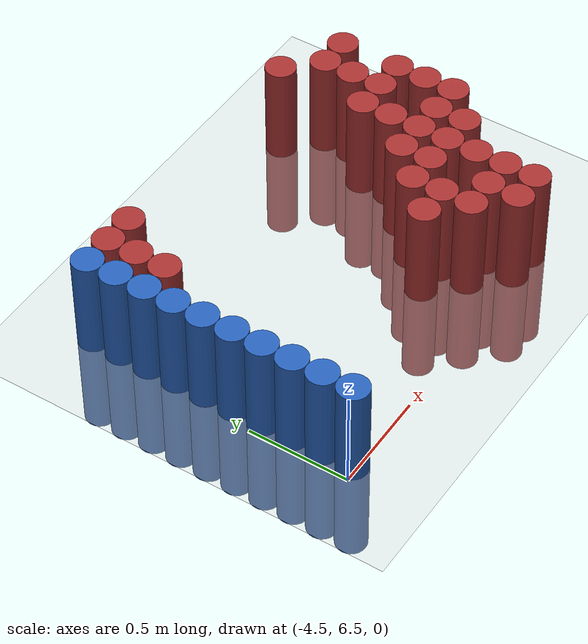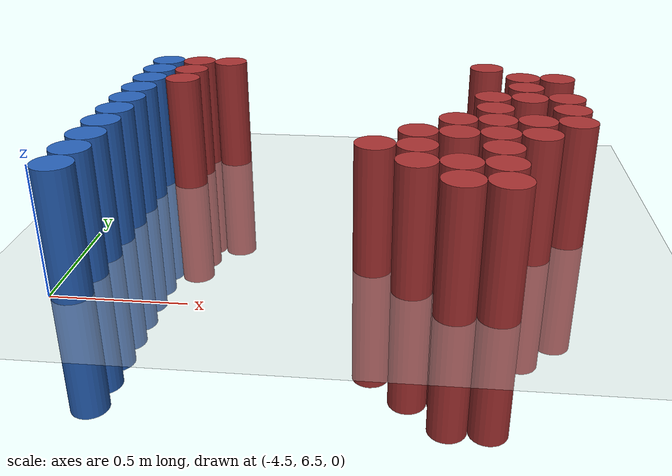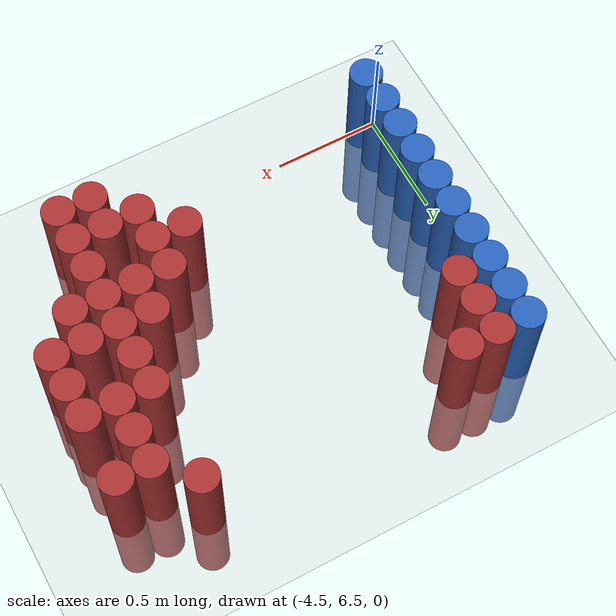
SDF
<sdf version="1.6">
 <world name="default">
  <model name="ground_plane">
   <static>1</static>
   <link name="link">
    <collision name="collision">
     <geometry><plane><normal>0 0 1</normal><size>100 100</size></plane></geometry>
     <surface><friction><ode><mu>100</mu><mu2>50</mu2></ode></friction></surface>
    </collision>
    <visual name="visual">
     <cast_shadows>0</cast_shadows>
     <geometry><plane><normal>0 0 1</normal><size>100 100</size></plane></geometry>
     <material>
      <script><uri>file://media/materials/scripts/gazebo.material</uri><name>Gazebo/Grey</name></script>
     </material>
    </visual>
   </link>
  </model>
  <model name="unit_cylinder_105">
   <static>1</static>
   <pose>-4.425000 6.525000 0.000000 0.000000 0.000000 0.000000</pose>
   <link name="link">
    <inertial>
     <mass>1</mass>
     <inertia><ixx>0.145833</ixx><ixy>0</ixy><ixz>0</ixz><iyy>0.145833</iyy><iyz>0</iyz><izz>0.125</izz></inertia>
    </inertial>
    <collision name="collision">
     <geometry><cylinder><radius>0.075000</radius><length>1</length></cylinder></geometry>
    </collision>
    <visual name="visual">
     <geometry><cylinder><radius>0.075000</radius><length>1</length></cylinder></geometry>
     <material>
      <ambient>0.152000 0.379000 0.720000 1</ambient>
      <diffuse>0.152000 0.379000 0.720000 1</diffuse>
     </material>
     <material>
      <script><name>Gazebo/Grey</name><uri>file://media/materials/scripts/gazebo.material</uri></script>
     </material>
    </visual>
    <sensor name="sensor_contact" type="contact"><contact><collision>collision</collision></contact></sensor>
   </link>
   <plugin filename="gz-sim-touchplugin-system" name="gz::sim::systems::TouchPlugin">
    <target>robot</target>
    <namespace>robot</namespace>
    <time>0.001</time>
    <enabled>true</enabled>
   </plugin>
  </model>
  <model name="unit_cylinder_106">
   <static>1</static>
   <pose>-4.425000 6.675000 0.000000 0.000000 0.000000 0.000000</pose>
   <link name="link">
    <inertial>
     <mass>1</mass>
     <inertia><ixx>0.145833</ixx><ixy>0</ixy><ixz>0</ixz><iyy>0.145833</iyy><iyz>0</iyz><izz>0.125</izz></inertia>
    </inertial>
    <collision name="collision">
     <geometry><cylinder><radius>0.075000</radius><length>1</length></cylinder></geometry>
    </collision>
    <visual name="visual">
     <geometry><cylinder><radius>0.075000</radius><length>1</length></cylinder></geometry>
     <material>
      <ambient>0.152000 0.379000 0.720000 1</ambient>
      <diffuse>0.152000 0.379000 0.720000 1</diffuse>
     </material>
     <material>
      <script><name>Gazebo/Grey</name><uri>file://media/materials/scripts/gazebo.material</uri></script>
     </material>
    </visual>
    <sensor name="sensor_contact" type="contact"><contact><collision>collision</collision></contact></sensor>
   </link>
   <plugin filename="gz-sim-touchplugin-system" name="gz::sim::systems::TouchPlugin">
    <target>robot</target>
    <namespace>robot</namespace>
    <time>0.001</time>
    <enabled>true</enabled>
   </plugin>
  </model>
  <model name="unit_cylinder_107">
   <static>1</static>
   <pose>-4.425000 6.825000 0.000000 0.000000 0.000000 0.000000</pose>
   <link name="link">
    <inertial>
     <mass>1</mass>
     <inertia><ixx>0.145833</ixx><ixy>0</ixy><ixz>0</ixz><iyy>0.145833</iyy><iyz>0</iyz><izz>0.125</izz></inertia>
    </inertial>
    <collision name="collision">
     <geometry><cylinder><radius>0.075000</radius><length>1</length></cylinder></geometry>
    </collision>
    <visual name="visual">
     <geometry><cylinder><radius>0.075000</radius><length>1</length></cylinder></geometry>
     <material>
      <ambient>0.152000 0.379000 0.720000 1</ambient>
      <diffuse>0.152000 0.379000 0.720000 1</diffuse>
     </material>
     <material>
      <script><name>Gazebo/Grey</name><uri>file://media/materials/scripts/gazebo.material</uri></script>
     </material>
    </visual>
    <sensor name="sensor_contact" type="contact"><contact><collision>collision</collision></contact></sensor>
   </link>
   <plugin filename="gz-sim-touchplugin-system" name="gz::sim::systems::TouchPlugin">
    <target>robot</target>
    <namespace>robot</namespace>
    <time>0.001</time>
    <enabled>true</enabled>
   </plugin>
  </model>
  <model name="unit_cylinder_108">
   <static>1</static>
   <pose>-4.425000 6.975000 0.000000 0.000000 0.000000 0.000000</pose>
   <link name="link">
    <inertial>
     <mass>1</mass>
     <inertia><ixx>0.145833</ixx><ixy>0</ixy><ixz>0</ixz><iyy>0.145833</iyy><iyz>0</iyz><izz>0.125</izz></inertia>
    </inertial>
    <collision name="collision">
     <geometry><cylinder><radius>0.075000</radius><length>1</length></cylinder></geometry>
    </collision>
    <visual name="visual">
     <geometry><cylinder><radius>0.075000</radius><length>1</length></cylinder></geometry>
     <material>
      <ambient>0.152000 0.379000 0.720000 1</ambient>
      <diffuse>0.152000 0.379000 0.720000 1</diffuse>
     </material>
     <material>
      <script><name>Gazebo/Grey</name><uri>file://media/materials/scripts/gazebo.material</uri></script>
     </material>
    </visual>
    <sensor name="sensor_contact" type="contact"><contact><collision>collision</collision></contact></sensor>
   </link>
   <plugin filename="gz-sim-touchplugin-system" name="gz::sim::systems::TouchPlugin">
    <target>robot</target>
    <namespace>robot</namespace>
    <time>0.001</time>
    <enabled>true</enabled>
   </plugin>
  </model>
  <model name="unit_cylinder_109">
   <static>1</static>
   <pose>-4.425000 7.125000 0.000000 0.000000 0.000000 0.000000</pose>
   <link name="link">
    <inertial>
     <mass>1</mass>
     <inertia><ixx>0.145833</ixx><ixy>0</ixy><ixz>0</ixz><iyy>0.145833</iyy><iyz>0</iyz><izz>0.125</izz></inertia>
    </inertial>
    <collision name="collision">
     <geometry><cylinder><radius>0.075000</radius><length>1</length></cylinder></geometry>
    </collision>
    <visual name="visual">
     <geometry><cylinder><radius>0.075000</radius><length>1</length></cylinder></geometry>
     <material>
      <ambient>0.152000 0.379000 0.720000 1</ambient>
      <diffuse>0.152000 0.379000 0.720000 1</diffuse>
     </material>
     <material>
      <script><name>Gazebo/Grey</name><uri>file://media/materials/scripts/gazebo.material</uri></script>
     </material>
    </visual>
    <sensor name="sensor_contact" type="contact"><contact><collision>collision</collision></contact></sensor>
   </link>
   <plugin filename="gz-sim-touchplugin-system" name="gz::sim::systems::TouchPlugin">
    <target>robot</target>
    <namespace>robot</namespace>
    <time>0.001</time>
    <enabled>true</enabled>
   </plugin>
  </model>
  <model name="unit_cylinder_110">
   <static>1</static>
   <pose>-4.425000 7.275000 0.000000 0.000000 0.000000 0.000000</pose>
   <link name="link">
    <inertial>
     <mass>1</mass>
     <inertia><ixx>0.145833</ixx><ixy>0</ixy><ixz>0</ixz><iyy>0.145833</iyy><iyz>0</iyz><izz>0.125</izz></inertia>
    </inertial>
    <collision name="collision">
     <geometry><cylinder><radius>0.075000</radius><length>1</length></cylinder></geometry>
    </collision>
    <visual name="visual">
     <geometry><cylinder><radius>0.075000</radius><length>1</length></cylinder></geometry>
     <material>
      <ambient>0.152000 0.379000 0.720000 1</ambient>
      <diffuse>0.152000 0.379000 0.720000 1</diffuse>
     </material>
     <material>
      <script><name>Gazebo/Grey</name><uri>file://media/materials/scripts/gazebo.material</uri></script>
     </material>
    </visual>
    <sensor name="sensor_contact" type="contact"><contact><collision>collision</collision></contact></sensor>
   </link>
   <plugin filename="gz-sim-touchplugin-system" name="gz::sim::systems::TouchPlugin">
    <target>robot</target>
    <namespace>robot</namespace>
    <time>0.001</time>
    <enabled>true</enabled>
   </plugin>
  </model>
  <model name="unit_cylinder_111">
   <static>1</static>
   <pose>-4.425000 7.425000 0.000000 0.000000 0.000000 0.000000</pose>
   <link name="link">
    <inertial>
     <mass>1</mass>
     <inertia><ixx>0.145833</ixx><ixy>0</ixy><ixz>0</ixz><iyy>0.145833</iyy><iyz>0</iyz><izz>0.125</izz></inertia>
    </inertial>
    <collision name="collision">
     <geometry><cylinder><radius>0.075000</radius><length>1</length></cylinder></geometry>
    </collision>
    <visual name="visual">
     <geometry><cylinder><radius>0.075000</radius><length>1</length></cylinder></geometry>
     <material>
      <ambient>0.152000 0.379000 0.720000 1</ambient>
      <diffuse>0.152000 0.379000 0.720000 1</diffuse>
     </material>
     <material>
      <script><name>Gazebo/Grey</name><uri>file://media/materials/scripts/gazebo.material</uri></script>
     </material>
    </visual>
    <sensor name="sensor_contact" type="contact"><contact><collision>collision</collision></contact></sensor>
   </link>
   <plugin filename="gz-sim-touchplugin-system" name="gz::sim::systems::TouchPlugin">
    <target>robot</target>
    <namespace>robot</namespace>
    <time>0.001</time>
    <enabled>true</enabled>
   </plugin>
  </model>
  <model name="unit_cylinder_112">
   <static>1</static>
   <pose>-4.425000 7.575000 0.000000 0.000000 0.000000 0.000000</pose>
   <link name="link">
    <inertial>
     <mass>1</mass>
     <inertia><ixx>0.145833</ixx><ixy>0</ixy><ixz>0</ixz><iyy>0.145833</iyy><iyz>0</iyz><izz>0.125</izz></inertia>
    </inertial>
    <collision name="collision">
     <geometry><cylinder><radius>0.075000</radius><length>1</length></cylinder></geometry>
    </collision>
    <visual name="visual">
     <geometry><cylinder><radius>0.075000</radius><length>1</length></cylinder></geometry>
     <material>
      <ambient>0.152000 0.379000 0.720000 1</ambient>
      <diffuse>0.152000 0.379000 0.720000 1</diffuse>
     </material>
     <material>
      <script><name>Gazebo/Grey</name><uri>file://media/materials/scripts/gazebo.material</uri></script>
     </material>
    </visual>
    <sensor name="sensor_contact" type="contact"><contact><collision>collision</collision></contact></sensor>
   </link>
   <plugin filename="gz-sim-touchplugin-system" name="gz::sim::systems::TouchPlugin">
    <target>robot</target>
    <namespace>robot</namespace>
    <time>0.001</time>
    <enabled>true</enabled>
   </plugin>
  </model>
  <model name="unit_cylinder_113">
   <static>1</static>
   <pose>-4.425000 7.725000 0.000000 0.000000 0.000000 0.000000</pose>
   <link name="link">
    <inertial>
     <mass>1</mass>
     <inertia><ixx>0.145833</ixx><ixy>0</ixy><ixz>0</ixz><iyy>0.145833</iyy><iyz>0</iyz><izz>0.125</izz></inertia>
    </inertial>
    <collision name="collision">
     <geometry><cylinder><radius>0.075000</radius><length>1</length></cylinder></geometry>
    </collision>
    <visual name="visual">
     <geometry><cylinder><radius>0.075000</radius><length>1</length></cylinder></geometry>
     <material>
      <ambient>0.152000 0.379000 0.720000 1</ambient>
      <diffuse>0.152000 0.379000 0.720000 1</diffuse>
     </material>
     <material>
      <script><name>Gazebo/Grey</name><uri>file://media/materials/scripts/gazebo.material</uri></script>
     </material>
    </visual>
    <sensor name="sensor_contact" type="contact"><contact><collision>collision</collision></contact></sensor>
   </link>
   <plugin filename="gz-sim-touchplugin-system" name="gz::sim::systems::TouchPlugin">
    <target>robot</target>
    <namespace>robot</namespace>
    <time>0.001</time>
    <enabled>true</enabled>
   </plugin>
  </model>
  <model name="unit_cylinder_114">
   <static>1</static>
   <pose>-4.425000 7.875000 0.000000 0.000000 0.000000 0.000000</pose>
   <link name="link">
    <inertial>
     <mass>1</mass>
     <inertia><ixx>0.145833</ixx><ixy>0</ixy><ixz>0</ixz><iyy>0.145833</iyy><iyz>0</iyz><izz>0.125</izz></inertia>
    </inertial>
    <collision name="collision">
     <geometry><cylinder><radius>0.075000</radius><length>1</length></cylinder></geometry>
    </collision>
    <visual name="visual">
     <geometry><cylinder><radius>0.075000</radius><length>1</length></cylinder></geometry>
     <material>
      <ambient>0.152000 0.379000 0.720000 1</ambient>
      <diffuse>0.152000 0.379000 0.720000 1</diffuse>
     </material>
     <material>
      <script><name>Gazebo/Grey</name><uri>file://media/materials/scripts/gazebo.material</uri></script>
     </material>
    </visual>
    <sensor name="sensor_contact" type="contact"><contact><collision>collision</collision></contact></sensor>
   </link>
   <plugin filename="gz-sim-touchplugin-system" name="gz::sim::systems::TouchPlugin">
    <target>robot</target>
    <namespace>robot</namespace>
    <time>0.001</time>
    <enabled>true</enabled>
   </plugin>
  </model>
  <model name="unit_cylinder_132">
   <static>1</static>
   <pose>-4.275000 7.575000 0.000000 0.000000 0.000000 0.000000</pose>
   <link name="link">
    <inertial>
     <mass>1</mass>
     <inertia><ixx>0.145833</ixx><ixy>0</ixy><ixz>0</ixz><iyy>0.145833</iyy><iyz>0</iyz><izz>0.125</izz></inertia>
    </inertial>
    <collision name="collision">
     <geometry><cylinder><radius>0.075000</radius><length>1</length></cylinder></geometry>
    </collision>
    <visual name="visual">
     <geometry><cylinder><radius>0.075000</radius><length>1</length></cylinder></geometry>
     <material>
      <ambient>0.648000 0.192000 0.192000 1</ambient>
      <diffuse>0.648000 0.192000 0.192000 1</diffuse>
     </material>
     <material>
      <script><name>Gazebo/Grey</name><uri>file://media/materials/scripts/gazebo.material</uri></script>
     </material>
    </visual>
    <sensor name="sensor_contact" type="contact"><contact><collision>collision</collision></contact></sensor>
   </link>
   <plugin filename="gz-sim-touchplugin-system" name="gz::sim::systems::TouchPlugin">
    <target>robot</target>
    <namespace>robot</namespace>
    <time>0.001</time>
    <enabled>true</enabled>
   </plugin>
  </model>
  <model name="unit_cylinder_133">
   <static>1</static>
   <pose>-4.275000 7.725000 0.000000 0.000000 0.000000 0.000000</pose>
   <link name="link">
    <inertial>
     <mass>1</mass>
     <inertia><ixx>0.145833</ixx><ixy>0</ixy><ixz>0</ixz><iyy>0.145833</iyy><iyz>0</iyz><izz>0.125</izz></inertia>
    </inertial>
    <collision name="collision">
     <geometry><cylinder><radius>0.075000</radius><length>1</length></cylinder></geometry>
    </collision>
    <visual name="visual">
     <geometry><cylinder><radius>0.075000</radius><length>1</length></cylinder></geometry>
     <material>
      <ambient>0.648000 0.192000 0.192000 1</ambient>
      <diffuse>0.648000 0.192000 0.192000 1</diffuse>
     </material>
     <material>
      <script><name>Gazebo/Grey</name><uri>file://media/materials/scripts/gazebo.material</uri></script>
     </material>
    </visual>
    <sensor name="sensor_contact" type="contact"><contact><collision>collision</collision></contact></sensor>
   </link>
   <plugin filename="gz-sim-touchplugin-system" name="gz::sim::systems::TouchPlugin">
    <target>robot</target>
    <namespace>robot</namespace>
    <time>0.001</time>
    <enabled>true</enabled>
   </plugin>
  </model>
  <model name="unit_cylinder_134">
   <static>1</static>
   <pose>-4.275000 7.875000 0.000000 0.000000 0.000000 0.000000</pose>
   <link name="link">
    <inertial>
     <mass>1</mass>
     <inertia><ixx>0.145833</ixx><ixy>0</ixy><ixz>0</ixz><iyy>0.145833</iyy><iyz>0</iyz><izz>0.125</izz></inertia>
    </inertial>
    <collision name="collision">
     <geometry><cylinder><radius>0.075000</radius><length>1</length></cylinder></geometry>
    </collision>
    <visual name="visual">
     <geometry><cylinder><radius>0.075000</radius><length>1</length></cylinder></geometry>
     <material>
      <ambient>0.648000 0.192000 0.192000 1</ambient>
      <diffuse>0.648000 0.192000 0.192000 1</diffuse>
     </material>
     <material>
      <script><name>Gazebo/Grey</name><uri>file://media/materials/scripts/gazebo.material</uri></script>
     </material>
    </visual>
    <sensor name="sensor_contact" type="contact"><contact><collision>collision</collision></contact></sensor>
   </link>
   <plugin filename="gz-sim-touchplugin-system" name="gz::sim::systems::TouchPlugin">
    <target>robot</target>
    <namespace>robot</namespace>
    <time>0.001</time>
    <enabled>true</enabled>
   </plugin>
  </model>
  <model name="unit_cylinder_141">
   <static>1</static>
   <pose>-4.125000 7.875000 0.000000 0.000000 0.000000 0.000000</pose>
   <link name="link">
    <inertial>
     <mass>1</mass>
     <inertia><ixx>0.145833</ixx><ixy>0</ixy><ixz>0</ixz><iyy>0.145833</iyy><iyz>0</iyz><izz>0.125</izz></inertia>
    </inertial>
    <collision name="collision">
     <geometry><cylinder><radius>0.075000</radius><length>1</length></cylinder></geometry>
    </collision>
    <visual name="visual">
     <geometry><cylinder><radius>0.075000</radius><length>1</length></cylinder></geometry>
     <material>
      <ambient>0.648000 0.192000 0.192000 1</ambient>
      <diffuse>0.648000 0.192000 0.192000 1</diffuse>
     </material>
     <material>
      <script><name>Gazebo/Grey</name><uri>file://media/materials/scripts/gazebo.material</uri></script>
     </material>
    </visual>
    <sensor name="sensor_contact" type="contact"><contact><collision>collision</collision></contact></sensor>
   </link>
   <plugin filename="gz-sim-touchplugin-system" name="gz::sim::systems::TouchPlugin">
    <target>robot</target>
    <namespace>robot</namespace>
    <time>0.001</time>
    <enabled>true</enabled>
   </plugin>
  </model>
  <model name="unit_cylinder_161">
   <static>1</static>
   <pose>-3.375000 6.825000 0.000000 0.000000 0.000000 0.000000</pose>
   <link name="link">
    <inertial>
     <mass>1</mass>
     <inertia><ixx>0.145833</ixx><ixy>0</ixy><ixz>0</ixz><iyy>0.145833</iyy><iyz>0</iyz><izz>0.125</izz></inertia>
    </inertial>
    <collision name="collision">
     <geometry><cylinder><radius>0.075000</radius><length>1</length></cylinder></geometry>
    </collision>
    <visual name="visual">
     <geometry><cylinder><radius>0.075000</radius><length>1</length></cylinder></geometry>
     <material>
      <ambient>0.648000 0.192000 0.192000 1</ambient>
      <diffuse>0.648000 0.192000 0.192000 1</diffuse>
     </material>
     <material>
      <script><name>Gazebo/Grey</name><uri>file://media/materials/scripts/gazebo.material</uri></script>
     </material>
    </visual>
    <sensor name="sensor_contact" type="contact"><contact><collision>collision</collision></contact></sensor>
   </link>
   <plugin filename="gz-sim-touchplugin-system" name="gz::sim::systems::TouchPlugin">
    <target>robot</target>
    <namespace>robot</namespace>
    <time>0.001</time>
    <enabled>true</enabled>
   </plugin>
  </model>
  <model name="unit_cylinder_165">
   <static>1</static>
   <pose>-3.225000 6.675000 0.000000 0.000000 0.000000 0.000000</pose>
   <link name="link">
    <inertial>
     <mass>1</mass>
     <inertia><ixx>0.145833</ixx><ixy>0</ixy><ixz>0</ixz><iyy>0.145833</iyy><iyz>0</iyz><izz>0.125</izz></inertia>
    </inertial>
    <collision name="collision">
     <geometry><cylinder><radius>0.075000</radius><length>1</length></cylinder></geometry>
    </collision>
    <visual name="visual">
     <geometry><cylinder><radius>0.075000</radius><length>1</length></cylinder></geometry>
     <material>
      <ambient>0.648000 0.192000 0.192000 1</ambient>
      <diffuse>0.648000 0.192000 0.192000 1</diffuse>
     </material>
     <material>
      <script><name>Gazebo/Grey</name><uri>file://media/materials/scripts/gazebo.material</uri></script>
     </material>
    </visual>
    <sensor name="sensor_contact" type="contact"><contact><collision>collision</collision></contact></sensor>
   </link>
   <plugin filename="gz-sim-touchplugin-system" name="gz::sim::systems::TouchPlugin">
    <target>robot</target>
    <namespace>robot</namespace>
    <time>0.001</time>
    <enabled>true</enabled>
   </plugin>
  </model>
  <model name="unit_cylinder_166">
   <static>1</static>
   <pose>-3.225000 6.825000 0.000000 0.000000 0.000000 0.000000</pose>
   <link name="link">
    <inertial>
     <mass>1</mass>
     <inertia><ixx>0.145833</ixx><ixy>0</ixy><ixz>0</ixz><iyy>0.145833</iyy><iyz>0</iyz><izz>0.125</izz></inertia>
    </inertial>
    <collision name="collision">
     <geometry><cylinder><radius>0.075000</radius><length>1</length></cylinder></geometry>
    </collision>
    <visual name="visual">
     <geometry><cylinder><radius>0.075000</radius><length>1</length></cylinder></geometry>
     <material>
      <ambient>0.648000 0.192000 0.192000 1</ambient>
      <diffuse>0.648000 0.192000 0.192000 1</diffuse>
     </material>
     <material>
      <script><name>Gazebo/Grey</name><uri>file://media/materials/scripts/gazebo.material</uri></script>
     </material>
    </visual>
    <sensor name="sensor_contact" type="contact"><contact><collision>collision</collision></contact></sensor>
   </link>
   <plugin filename="gz-sim-touchplugin-system" name="gz::sim::systems::TouchPlugin">
    <target>robot</target>
    <namespace>robot</namespace>
    <time>0.001</time>
    <enabled>true</enabled>
   </plugin>
  </model>
  <model name="unit_cylinder_167">
   <static>1</static>
   <pose>-3.225000 6.975000 0.000000 0.000000 0.000000 0.000000</pose>
   <link name="link">
    <inertial>
     <mass>1</mass>
     <inertia><ixx>0.145833</ixx><ixy>0</ixy><ixz>0</ixz><iyy>0.145833</iyy><iyz>0</iyz><izz>0.125</izz></inertia>
    </inertial>
    <collision name="collision">
     <geometry><cylinder><radius>0.075000</radius><length>1</length></cylinder></geometry>
    </collision>
    <visual name="visual">
     <geometry><cylinder><radius>0.075000</radius><length>1</length></cylinder></geometry>
     <material>
      <ambient>0.648000 0.192000 0.192000 1</ambient>
      <diffuse>0.648000 0.192000 0.192000 1</diffuse>
     </material>
     <material>
      <script><name>Gazebo/Grey</name><uri>file://media/materials/scripts/gazebo.material</uri></script>
     </material>
    </visual>
    <sensor name="sensor_contact" type="contact"><contact><collision>collision</collision></contact></sensor>
   </link>
   <plugin filename="gz-sim-touchplugin-system" name="gz::sim::systems::TouchPlugin">
    <target>robot</target>
    <namespace>robot</namespace>
    <time>0.001</time>
    <enabled>true</enabled>
   </plugin>
  </model>
  <model name="unit_cylinder_168">
   <static>1</static>
   <pose>-3.075000 6.525000 0.000000 0.000000 0.000000 0.000000</pose>
   <link name="link">
    <inertial>
     <mass>1</mass>
     <inertia><ixx>0.145833</ixx><ixy>0</ixy><ixz>0</ixz><iyy>0.145833</iyy><iyz>0</iyz><izz>0.125</izz></inertia>
    </inertial>
    <collision name="collision">
     <geometry><cylinder><radius>0.075000</radius><length>1</length></cylinder></geometry>
    </collision>
    <visual name="visual">
     <geometry><cylinder><radius>0.075000</radius><length>1</length></cylinder></geometry>
     <material>
      <ambient>0.648000 0.192000 0.192000 1</ambient>
      <diffuse>0.648000 0.192000 0.192000 1</diffuse>
     </material>
     <material>
      <script><name>Gazebo/Grey</name><uri>file://media/materials/scripts/gazebo.material</uri></script>
     </material>
    </visual>
    <sensor name="sensor_contact" type="contact"><contact><collision>collision</collision></contact></sensor>
   </link>
   <plugin filename="gz-sim-touchplugin-system" name="gz::sim::systems::TouchPlugin">
    <target>robot</target>
    <namespace>robot</namespace>
    <time>0.001</time>
    <enabled>true</enabled>
   </plugin>
  </model>
  <model name="unit_cylinder_169">
   <static>1</static>
   <pose>-3.075000 6.675000 0.000000 0.000000 0.000000 0.000000</pose>
   <link name="link">
    <inertial>
     <mass>1</mass>
     <inertia><ixx>0.145833</ixx><ixy>0</ixy><ixz>0</ixz><iyy>0.145833</iyy><iyz>0</iyz><izz>0.125</izz></inertia>
    </inertial>
    <collision name="collision">
     <geometry><cylinder><radius>0.075000</radius><length>1</length></cylinder></geometry>
    </collision>
    <visual name="visual">
     <geometry><cylinder><radius>0.075000</radius><length>1</length></cylinder></geometry>
     <material>
      <ambient>0.648000 0.192000 0.192000 1</ambient>
      <diffuse>0.648000 0.192000 0.192000 1</diffuse>
     </material>
     <material>
      <script><name>Gazebo/Grey</name><uri>file://media/materials/scripts/gazebo.material</uri></script>
     </material>
    </visual>
    <sensor name="sensor_contact" type="contact"><contact><collision>collision</collision></contact></sensor>
   </link>
   <plugin filename="gz-sim-touchplugin-system" name="gz::sim::systems::TouchPlugin">
    <target>robot</target>
    <namespace>robot</namespace>
    <time>0.001</time>
    <enabled>true</enabled>
   </plugin>
  </model>
  <model name="unit_cylinder_170">
   <static>1</static>
   <pose>-3.075000 6.975000 0.000000 0.000000 0.000000 0.000000</pose>
   <link name="link">
    <inertial>
     <mass>1</mass>
     <inertia><ixx>0.145833</ixx><ixy>0</ixy><ixz>0</ixz><iyy>0.145833</iyy><iyz>0</iyz><izz>0.125</izz></inertia>
    </inertial>
    <collision name="collision">
     <geometry><cylinder><radius>0.075000</radius><length>1</length></cylinder></geometry>
    </collision>
    <visual name="visual">
     <geometry><cylinder><radius>0.075000</radius><length>1</length></cylinder></geometry>
     <material>
      <ambient>0.648000 0.192000 0.192000 1</ambient>
      <diffuse>0.648000 0.192000 0.192000 1</diffuse>
     </material>
     <material>
      <script><name>Gazebo/Grey</name><uri>file://media/materials/scripts/gazebo.material</uri></script>
     </material>
    </visual>
    <sensor name="sensor_contact" type="contact"><contact><collision>collision</collision></contact></sensor>
   </link>
   <plugin filename="gz-sim-touchplugin-system" name="gz::sim::systems::TouchPlugin">
    <target>robot</target>
    <namespace>robot</namespace>
    <time>0.001</time>
    <enabled>true</enabled>
   </plugin>
  </model>
  <model name="unit_cylinder_171">
   <static>1</static>
   <pose>-3.075000 7.125000 0.000000 0.000000 0.000000 0.000000</pose>
   <link name="link">
    <inertial>
     <mass>1</mass>
     <inertia><ixx>0.145833</ixx><ixy>0</ixy><ixz>0</ixz><iyy>0.145833</iyy><iyz>0</iyz><izz>0.125</izz></inertia>
    </inertial>
    <collision name="collision">
     <geometry><cylinder><radius>0.075000</radius><length>1</length></cylinder></geometry>
    </collision>
    <visual name="visual">
     <geometry><cylinder><radius>0.075000</radius><length>1</length></cylinder></geometry>
     <material>
      <ambient>0.648000 0.192000 0.192000 1</ambient>
      <diffuse>0.648000 0.192000 0.192000 1</diffuse>
     </material>
     <material>
      <script><name>Gazebo/Grey</name><uri>file://media/materials/scripts/gazebo.material</uri></script>
     </material>
    </visual>
    <sensor name="sensor_contact" type="contact"><contact><collision>collision</collision></contact></sensor>
   </link>
   <plugin filename="gz-sim-touchplugin-system" name="gz::sim::systems::TouchPlugin">
    <target>robot</target>
    <namespace>robot</namespace>
    <time>0.001</time>
    <enabled>true</enabled>
   </plugin>
  </model>
  <model name="unit_cylinder_173">
   <static>1</static>
   <pose>-2.925000 6.525000 0.000000 0.000000 0.000000 0.000000</pose>
   <link name="link">
    <inertial>
     <mass>1</mass>
     <inertia><ixx>0.145833</ixx><ixy>0</ixy><ixz>0</ixz><iyy>0.145833</iyy><iyz>0</iyz><izz>0.125</izz></inertia>
    </inertial>
    <collision name="collision">
     <geometry><cylinder><radius>0.075000</radius><length>1</length></cylinder></geometry>
    </collision>
    <visual name="visual">
     <geometry><cylinder><radius>0.075000</radius><length>1</length></cylinder></geometry>
     <material>
      <ambient>0.648000 0.192000 0.192000 1</ambient>
      <diffuse>0.648000 0.192000 0.192000 1</diffuse>
     </material>
     <material>
      <script><name>Gazebo/Grey</name><uri>file://media/materials/scripts/gazebo.material</uri></script>
     </material>
    </visual>
    <sensor name="sensor_contact" type="contact"><contact><collision>collision</collision></contact></sensor>
   </link>
   <plugin filename="gz-sim-touchplugin-system" name="gz::sim::systems::TouchPlugin">
    <target>robot</target>
    <namespace>robot</namespace>
    <time>0.001</time>
    <enabled>true</enabled>
   </plugin>
  </model>
  <model name="unit_cylinder_174">
   <static>1</static>
   <pose>-2.925000 6.675000 0.000000 0.000000 0.000000 0.000000</pose>
   <link name="link">
    <inertial>
     <mass>1</mass>
     <inertia><ixx>0.145833</ixx><ixy>0</ixy><ixz>0</ixz><iyy>0.145833</iyy><iyz>0</iyz><izz>0.125</izz></inertia>
    </inertial>
    <collision name="collision">
     <geometry><cylinder><radius>0.075000</radius><length>1</length></cylinder></geometry>
    </collision>
    <visual name="visual">
     <geometry><cylinder><radius>0.075000</radius><length>1</length></cylinder></geometry>
     <material>
      <ambient>0.648000 0.192000 0.192000 1</ambient>
      <diffuse>0.648000 0.192000 0.192000 1</diffuse>
     </material>
     <material>
      <script><name>Gazebo/Grey</name><uri>file://media/materials/scripts/gazebo.material</uri></script>
     </material>
    </visual>
    <sensor name="sensor_contact" type="contact"><contact><collision>collision</collision></contact></sensor>
   </link>
   <plugin filename="gz-sim-touchplugin-system" name="gz::sim::systems::TouchPlugin">
    <target>robot</target>
    <namespace>robot</namespace>
    <time>0.001</time>
    <enabled>true</enabled>
   </plugin>
  </model>
  <model name="unit_cylinder_175">
   <static>1</static>
   <pose>-2.925000 6.825000 0.000000 0.000000 0.000000 0.000000</pose>
   <link name="link">
    <inertial>
     <mass>1</mass>
     <inertia><ixx>0.145833</ixx><ixy>0</ixy><ixz>0</ixz><iyy>0.145833</iyy><iyz>0</iyz><izz>0.125</izz></inertia>
    </inertial>
    <collision name="collision">
     <geometry><cylinder><radius>0.075000</radius><length>1</length></cylinder></geometry>
    </collision>
    <visual name="visual">
     <geometry><cylinder><radius>0.075000</radius><length>1</length></cylinder></geometry>
     <material>
      <ambient>0.648000 0.192000 0.192000 1</ambient>
      <diffuse>0.648000 0.192000 0.192000 1</diffuse>
     </material>
     <material>
      <script><name>Gazebo/Grey</name><uri>file://media/materials/scripts/gazebo.material</uri></script>
     </material>
    </visual>
    <sensor name="sensor_contact" type="contact"><contact><collision>collision</collision></contact></sensor>
   </link>
   <plugin filename="gz-sim-touchplugin-system" name="gz::sim::systems::TouchPlugin">
    <target>robot</target>
    <namespace>robot</namespace>
    <time>0.001</time>
    <enabled>true</enabled>
   </plugin>
  </model>
  <model name="unit_cylinder_176">
   <static>1</static>
   <pose>-2.925000 6.975000 0.000000 0.000000 0.000000 0.000000</pose>
   <link name="link">
    <inertial>
     <mass>1</mass>
     <inertia><ixx>0.145833</ixx><ixy>0</ixy><ixz>0</ixz><iyy>0.145833</iyy><iyz>0</iyz><izz>0.125</izz></inertia>
    </inertial>
    <collision name="collision">
     <geometry><cylinder><radius>0.075000</radius><length>1</length></cylinder></geometry>
    </collision>
    <visual name="visual">
     <geometry><cylinder><radius>0.075000</radius><length>1</length></cylinder></geometry>
     <material>
      <ambient>0.648000 0.192000 0.192000 1</ambient>
      <diffuse>0.648000 0.192000 0.192000 1</diffuse>
     </material>
     <material>
      <script><name>Gazebo/Grey</name><uri>file://media/materials/scripts/gazebo.material</uri></script>
     </material>
    </visual>
    <sensor name="sensor_contact" type="contact"><contact><collision>collision</collision></contact></sensor>
   </link>
   <plugin filename="gz-sim-touchplugin-system" name="gz::sim::systems::TouchPlugin">
    <target>robot</target>
    <namespace>robot</namespace>
    <time>0.001</time>
    <enabled>true</enabled>
   </plugin>
  </model>
  <model name="unit_cylinder_177">
   <static>1</static>
   <pose>-2.925000 7.125000 0.000000 0.000000 0.000000 0.000000</pose>
   <link name="link">
    <inertial>
     <mass>1</mass>
     <inertia><ixx>0.145833</ixx><ixy>0</ixy><ixz>0</ixz><iyy>0.145833</iyy><iyz>0</iyz><izz>0.125</izz></inertia>
    </inertial>
    <collision name="collision">
     <geometry><cylinder><radius>0.075000</radius><length>1</length></cylinder></geometry>
    </collision>
    <visual name="visual">
     <geometry><cylinder><radius>0.075000</radius><length>1</length></cylinder></geometry>
     <material>
      <ambient>0.648000 0.192000 0.192000 1</ambient>
      <diffuse>0.648000 0.192000 0.192000 1</diffuse>
     </material>
     <material>
      <script><name>Gazebo/Grey</name><uri>file://media/materials/scripts/gazebo.material</uri></script>
     </material>
    </visual>
    <sensor name="sensor_contact" type="contact"><contact><collision>collision</collision></contact></sensor>
   </link>
   <plugin filename="gz-sim-touchplugin-system" name="gz::sim::systems::TouchPlugin">
    <target>robot</target>
    <namespace>robot</namespace>
    <time>0.001</time>
    <enabled>true</enabled>
   </plugin>
  </model>
  <model name="unit_cylinder_178">
   <static>1</static>
   <pose>-2.925000 7.275000 0.000000 0.000000 0.000000 0.000000</pose>
   <link name="link">
    <inertial>
     <mass>1</mass>
     <inertia><ixx>0.145833</ixx><ixy>0</ixy><ixz>0</ixz><iyy>0.145833</iyy><iyz>0</iyz><izz>0.125</izz></inertia>
    </inertial>
    <collision name="collision">
     <geometry><cylinder><radius>0.075000</radius><length>1</length></cylinder></geometry>
    </collision>
    <visual name="visual">
     <geometry><cylinder><radius>0.075000</radius><length>1</length></cylinder></geometry>
     <material>
      <ambient>0.648000 0.192000 0.192000 1</ambient>
      <diffuse>0.648000 0.192000 0.192000 1</diffuse>
     </material>
     <material>
      <script><name>Gazebo/Grey</name><uri>file://media/materials/scripts/gazebo.material</uri></script>
     </material>
    </visual>
    <sensor name="sensor_contact" type="contact"><contact><collision>collision</collision></contact></sensor>
   </link>
   <plugin filename="gz-sim-touchplugin-system" name="gz::sim::systems::TouchPlugin">
    <target>robot</target>
    <namespace>robot</namespace>
    <time>0.001</time>
    <enabled>true</enabled>
   </plugin>
  </model>
  <model name="unit_cylinder_179">
   <static>1</static>
   <pose>-2.925000 7.425000 0.000000 0.000000 0.000000 0.000000</pose>
   <link name="link">
    <inertial>
     <mass>1</mass>
     <inertia><ixx>0.145833</ixx><ixy>0</ixy><ixz>0</ixz><iyy>0.145833</iyy><iyz>0</iyz><izz>0.125</izz></inertia>
    </inertial>
    <collision name="collision">
     <geometry><cylinder><radius>0.075000</radius><length>1</length></cylinder></geometry>
    </collision>
    <visual name="visual">
     <geometry><cylinder><radius>0.075000</radius><length>1</length></cylinder></geometry>
     <material>
      <ambient>0.648000 0.192000 0.192000 1</ambient>
      <diffuse>0.648000 0.192000 0.192000 1</diffuse>
     </material>
     <material>
      <script><name>Gazebo/Grey</name><uri>file://media/materials/scripts/gazebo.material</uri></script>
     </material>
    </visual>
    <sensor name="sensor_contact" type="contact"><contact><collision>collision</collision></contact></sensor>
   </link>
   <plugin filename="gz-sim-touchplugin-system" name="gz::sim::systems::TouchPlugin">
    <target>robot</target>
    <namespace>robot</namespace>
    <time>0.001</time>
    <enabled>true</enabled>
   </plugin>
  </model>
  <model name="unit_cylinder_180">
   <static>1</static>
   <pose>-2.925000 7.875000 0.000000 0.000000 0.000000 0.000000</pose>
   <link name="link">
    <inertial>
     <mass>1</mass>
     <inertia><ixx>0.145833</ixx><ixy>0</ixy><ixz>0</ixz><iyy>0.145833</iyy><iyz>0</iyz><izz>0.125</izz></inertia>
    </inertial>
    <collision name="collision">
     <geometry><cylinder><radius>0.075000</radius><length>1</length></cylinder></geometry>
    </collision>
    <visual name="visual">
     <geometry><cylinder><radius>0.075000</radius><length>1</length></cylinder></geometry>
     <material>
      <ambient>0.648000 0.192000 0.192000 1</ambient>
      <diffuse>0.648000 0.192000 0.192000 1</diffuse>
     </material>
     <material>
      <script><name>Gazebo/Grey</name><uri>file://media/materials/scripts/gazebo.material</uri></script>
     </material>
    </visual>
    <sensor name="sensor_contact" type="contact"><contact><collision>collision</collision></contact></sensor>
   </link>
   <plugin filename="gz-sim-touchplugin-system" name="gz::sim::systems::TouchPlugin">
    <target>robot</target>
    <namespace>robot</namespace>
    <time>0.001</time>
    <enabled>true</enabled>
   </plugin>
  </model>
  <model name="unit_cylinder_183">
   <static>1</static>
   <pose>-2.775000 6.975000 0.000000 0.000000 0.000000 0.000000</pose>
   <link name="link">
    <inertial>
     <mass>1</mass>
     <inertia><ixx>0.145833</ixx><ixy>0</ixy><ixz>0</ixz><iyy>0.145833</iyy><iyz>0</iyz><izz>0.125</izz></inertia>
    </inertial>
    <collision name="collision">
     <geometry><cylinder><radius>0.075000</radius><length>1</length></cylinder></geometry>
    </collision>
    <visual name="visual">
     <geometry><cylinder><radius>0.075000</radius><length>1</length></cylinder></geometry>
     <material>
      <ambient>0.648000 0.192000 0.192000 1</ambient>
      <diffuse>0.648000 0.192000 0.192000 1</diffuse>
     </material>
     <material>
      <script><name>Gazebo/Grey</name><uri>file://media/materials/scripts/gazebo.material</uri></script>
     </material>
    </visual>
    <sensor name="sensor_contact" type="contact"><contact><collision>collision</collision></contact></sensor>
   </link>
   <plugin filename="gz-sim-touchplugin-system" name="gz::sim::systems::TouchPlugin">
    <target>robot</target>
    <namespace>robot</namespace>
    <time>0.001</time>
    <enabled>true</enabled>
   </plugin>
  </model>
  <model name="unit_cylinder_184">
   <static>1</static>
   <pose>-2.775000 7.125000 0.000000 0.000000 0.000000 0.000000</pose>
   <link name="link">
    <inertial>
     <mass>1</mass>
     <inertia><ixx>0.145833</ixx><ixy>0</ixy><ixz>0</ixz><iyy>0.145833</iyy><iyz>0</iyz><izz>0.125</izz></inertia>
    </inertial>
    <collision name="collision">
     <geometry><cylinder><radius>0.075000</radius><length>1</length></cylinder></geometry>
    </collision>
    <visual name="visual">
     <geometry><cylinder><radius>0.075000</radius><length>1</length></cylinder></geometry>
     <material>
      <ambient>0.648000 0.192000 0.192000 1</ambient>
      <diffuse>0.648000 0.192000 0.192000 1</diffuse>
     </material>
     <material>
      <script><name>Gazebo/Grey</name><uri>file://media/materials/scripts/gazebo.material</uri></script>
     </material>
    </visual>
    <sensor name="sensor_contact" type="contact"><contact><collision>collision</collision></contact></sensor>
   </link>
   <plugin filename="gz-sim-touchplugin-system" name="gz::sim::systems::TouchPlugin">
    <target>robot</target>
    <namespace>robot</namespace>
    <time>0.001</time>
    <enabled>true</enabled>
   </plugin>
  </model>
  <model name="unit_cylinder_185">
   <static>1</static>
   <pose>-2.775000 7.425000 0.000000 0.000000 0.000000 0.000000</pose>
   <link name="link">
    <inertial>
     <mass>1</mass>
     <inertia><ixx>0.145833</ixx><ixy>0</ixy><ixz>0</ixz><iyy>0.145833</iyy><iyz>0</iyz><izz>0.125</izz></inertia>
    </inertial>
    <collision name="collision">
     <geometry><cylinder><radius>0.075000</radius><length>1</length></cylinder></geometry>
    </collision>
    <visual name="visual">
     <geometry><cylinder><radius>0.075000</radius><length>1</length></cylinder></geometry>
     <material>
      <ambient>0.648000 0.192000 0.192000 1</ambient>
      <diffuse>0.648000 0.192000 0.192000 1</diffuse>
     </material>
     <material>
      <script><name>Gazebo/Grey</name><uri>file://media/materials/scripts/gazebo.material</uri></script>
     </material>
    </visual>
    <sensor name="sensor_contact" type="contact"><contact><collision>collision</collision></contact></sensor>
   </link>
   <plugin filename="gz-sim-touchplugin-system" name="gz::sim::systems::TouchPlugin">
    <target>robot</target>
    <namespace>robot</namespace>
    <time>0.001</time>
    <enabled>true</enabled>
   </plugin>
  </model>
  <model name="unit_cylinder_186">
   <static>1</static>
   <pose>-2.775000 7.575000 0.000000 0.000000 0.000000 0.000000</pose>
   <link name="link">
    <inertial>
     <mass>1</mass>
     <inertia><ixx>0.145833</ixx><ixy>0</ixy><ixz>0</ixz><iyy>0.145833</iyy><iyz>0</iyz><izz>0.125</izz></inertia>
    </inertial>
    <collision name="collision">
     <geometry><cylinder><radius>0.075000</radius><length>1</length></cylinder></geometry>
    </collision>
    <visual name="visual">
     <geometry><cylinder><radius>0.075000</radius><length>1</length></cylinder></geometry>
     <material>
      <ambient>0.648000 0.192000 0.192000 1</ambient>
      <diffuse>0.648000 0.192000 0.192000 1</diffuse>
     </material>
     <material>
      <script><name>Gazebo/Grey</name><uri>file://media/materials/scripts/gazebo.material</uri></script>
     </material>
    </visual>
    <sensor name="sensor_contact" type="contact"><contact><collision>collision</collision></contact></sensor>
   </link>
   <plugin filename="gz-sim-touchplugin-system" name="gz::sim::systems::TouchPlugin">
    <target>robot</target>
    <namespace>robot</namespace>
    <time>0.001</time>
    <enabled>true</enabled>
   </plugin>
  </model>
  <model name="unit_cylinder_187">
   <static>1</static>
   <pose>-2.775000 7.725000 0.000000 0.000000 0.000000 0.000000</pose>
   <link name="link">
    <inertial>
     <mass>1</mass>
     <inertia><ixx>0.145833</ixx><ixy>0</ixy><ixz>0</ixz><iyy>0.145833</iyy><iyz>0</iyz><izz>0.125</izz></inertia>
    </inertial>
    <collision name="collision">
     <geometry><cylinder><radius>0.075000</radius><length>1</length></cylinder></geometry>
    </collision>
    <visual name="visual">
     <geometry><cylinder><radius>0.075000</radius><length>1</length></cylinder></geometry>
     <material>
      <ambient>0.648000 0.192000 0.192000 1</ambient>
      <diffuse>0.648000 0.192000 0.192000 1</diffuse>
     </material>
     <material>
      <script><name>Gazebo/Grey</name><uri>file://media/materials/scripts/gazebo.material</uri></script>
     </material>
    </visual>
    <sensor name="sensor_contact" type="contact"><contact><collision>collision</collision></contact></sensor>
   </link>
   <plugin filename="gz-sim-touchplugin-system" name="gz::sim::systems::TouchPlugin">
    <target>robot</target>
    <namespace>robot</namespace>
    <time>0.001</time>
    <enabled>true</enabled>
   </plugin>
  </model>
  <model name="unit_cylinder_193">
   <static>1</static>
   <pose>-2.625000 7.125000 0.000000 0.000000 0.000000 0.000000</pose>
   <link name="link">
    <inertial>
     <mass>1</mass>
     <inertia><ixx>0.145833</ixx><ixy>0</ixy><ixz>0</ixz><iyy>0.145833</iyy><iyz>0</iyz><izz>0.125</izz></inertia>
    </inertial>
    <collision name="collision">
     <geometry><cylinder><radius>0.075000</radius><length>1</length></cylinder></geometry>
    </collision>
    <visual name="visual">
     <geometry><cylinder><radius>0.075000</radius><length>1</length></cylinder></geometry>
     <material>
      <ambient>0.648000 0.192000 0.192000 1</ambient>
      <diffuse>0.648000 0.192000 0.192000 1</diffuse>
     </material>
     <material>
      <script><name>Gazebo/Grey</name><uri>file://media/materials/scripts/gazebo.material</uri></script>
     </material>
    </visual>
    <sensor name="sensor_contact" type="contact"><contact><collision>collision</collision></contact></sensor>
   </link>
   <plugin filename="gz-sim-touchplugin-system" name="gz::sim::systems::TouchPlugin">
    <target>robot</target>
    <namespace>robot</namespace>
    <time>0.001</time>
    <enabled>true</enabled>
   </plugin>
  </model>
  <model name="unit_cylinder_194">
   <static>1</static>
   <pose>-2.625000 7.275000 0.000000 0.000000 0.000000 0.000000</pose>
   <link name="link">
    <inertial>
     <mass>1</mass>
     <inertia><ixx>0.145833</ixx><ixy>0</ixy><ixz>0</ixz><iyy>0.145833</iyy><iyz>0</iyz><izz>0.125</izz></inertia>
    </inertial>
    <collision name="collision">
     <geometry><cylinder><radius>0.075000</radius><length>1</length></cylinder></geometry>
    </collision>
    <visual name="visual">
     <geometry><cylinder><radius>0.075000</radius><length>1</length></cylinder></geometry>
     <material>
      <ambient>0.648000 0.192000 0.192000 1</ambient>
      <diffuse>0.648000 0.192000 0.192000 1</diffuse>
     </material>
     <material>
      <script><name>Gazebo/Grey</name><uri>file://media/materials/scripts/gazebo.material</uri></script>
     </material>
    </visual>
    <sensor name="sensor_contact" type="contact"><contact><collision>collision</collision></contact></sensor>
   </link>
   <plugin filename="gz-sim-touchplugin-system" name="gz::sim::systems::TouchPlugin">
    <target>robot</target>
    <namespace>robot</namespace>
    <time>0.001</time>
    <enabled>true</enabled>
   </plugin>
  </model>
  <model name="unit_cylinder_195">
   <static>1</static>
   <pose>-2.625000 7.425000 0.000000 0.000000 0.000000 0.000000</pose>
   <link name="link">
    <inertial>
     <mass>1</mass>
     <inertia><ixx>0.145833</ixx><ixy>0</ixy><ixz>0</ixz><iyy>0.145833</iyy><iyz>0</iyz><izz>0.125</izz></inertia>
    </inertial>
    <collision name="collision">
     <geometry><cylinder><radius>0.075000</radius><length>1</length></cylinder></geometry>
    </collision>
    <visual name="visual">
     <geometry><cylinder><radius>0.075000</radius><length>1</length></cylinder></geometry>
     <material>
      <ambient>0.648000 0.192000 0.192000 1</ambient>
      <diffuse>0.648000 0.192000 0.192000 1</diffuse>
     </material>
     <material>
      <script><name>Gazebo/Grey</name><uri>file://media/materials/scripts/gazebo.material</uri></script>
     </material>
    </visual>
    <sensor name="sensor_contact" type="contact"><contact><collision>collision</collision></contact></sensor>
   </link>
   <plugin filename="gz-sim-touchplugin-system" name="gz::sim::systems::TouchPlugin">
    <target>robot</target>
    <namespace>robot</namespace>
    <time>0.001</time>
    <enabled>true</enabled>
   </plugin>
  </model>
  <model name="unit_cylinder_196">
   <static>1</static>
   <pose>-2.625000 7.725000 0.000000 0.000000 0.000000 0.000000</pose>
   <link name="link">
    <inertial>
     <mass>1</mass>
     <inertia><ixx>0.145833</ixx><ixy>0</ixy><ixz>0</ixz><iyy>0.145833</iyy><iyz>0</iyz><izz>0.125</izz></inertia>
    </inertial>
    <collision name="collision">
     <geometry><cylinder><radius>0.075000</radius><length>1</length></cylinder></geometry>
    </collision>
    <visual name="visual">
     <geometry><cylinder><radius>0.075000</radius><length>1</length></cylinder></geometry>
     <material>
      <ambient>0.648000 0.192000 0.192000 1</ambient>
      <diffuse>0.648000 0.192000 0.192000 1</diffuse>
     </material>
     <material>
      <script><name>Gazebo/Grey</name><uri>file://media/materials/scripts/gazebo.material</uri></script>
     </material>
    </visual>
    <sensor name="sensor_contact" type="contact"><contact><collision>collision</collision></contact></sensor>
   </link>
   <plugin filename="gz-sim-touchplugin-system" name="gz::sim::systems::TouchPlugin">
    <target>robot</target>
    <namespace>robot</namespace>
    <time>0.001</time>
    <enabled>true</enabled>
   </plugin>
  </model>
 </world>
</sdf>
